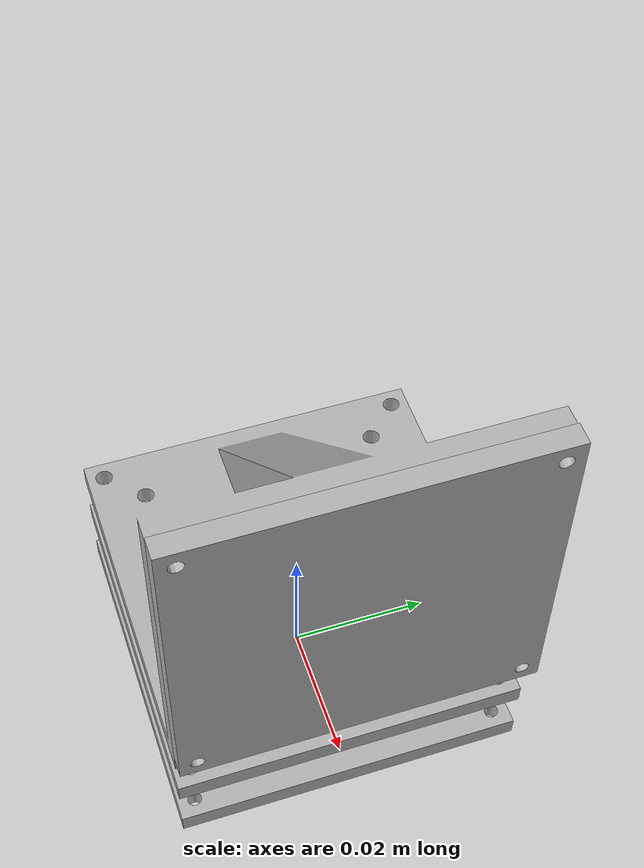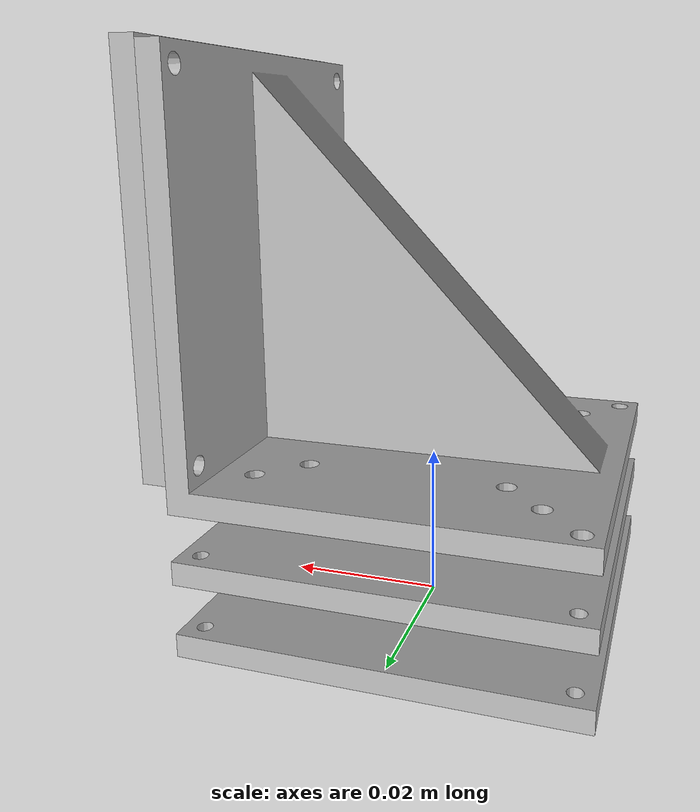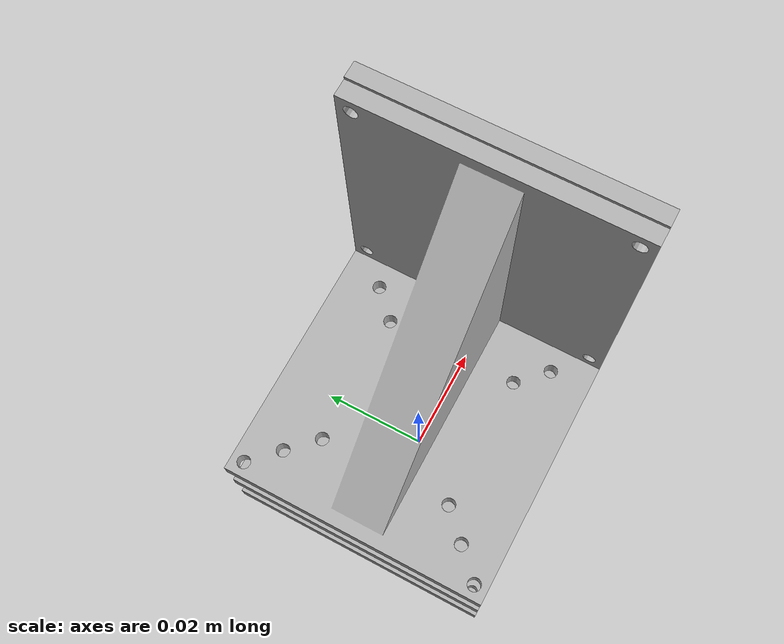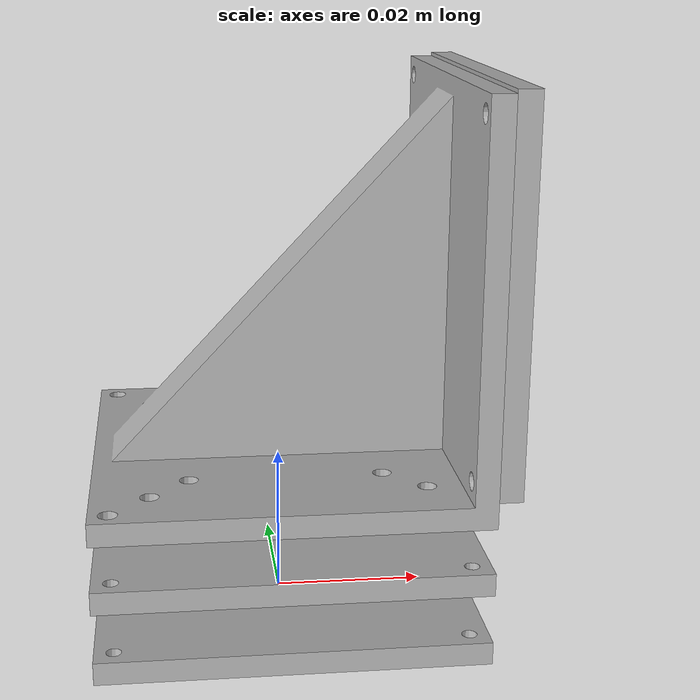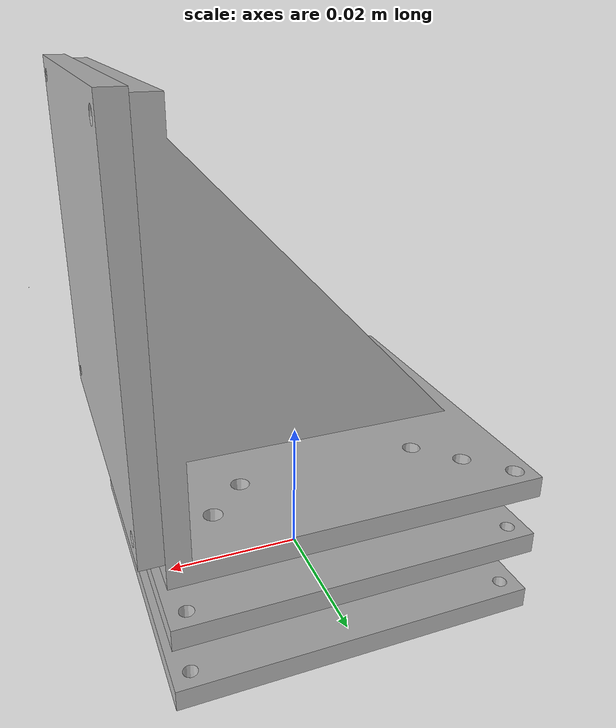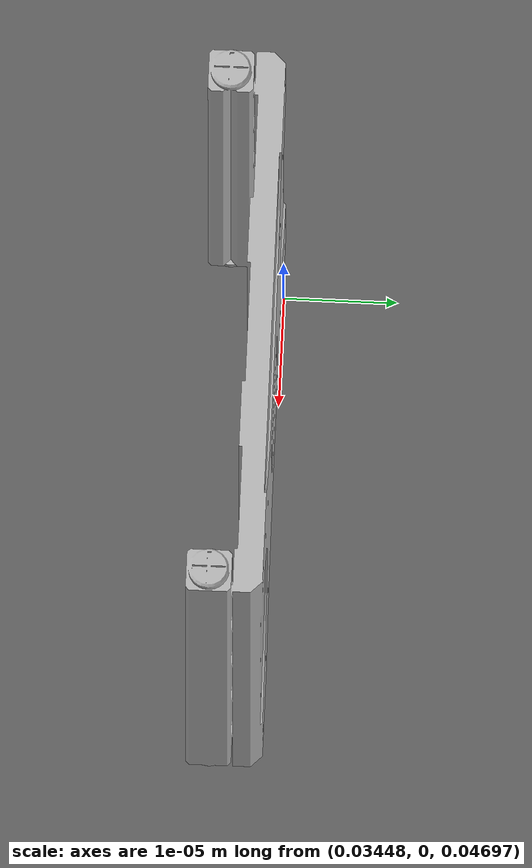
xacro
<?xml version="1.0"?>
<robot xmlns:xacro="http://www.ros.org/wiki/xacro" name="stage">

    <xacro:arg name="hardware_interface" default="PositionJointInterface"/>
    <xacro:arg name="prefix" default="x"/>
    <link name="base_link"/>

    <xacro:include filename="$(find micro_resector_description)/urdf/materials.xacro" />
    <xacro:include filename="$(find micro_resector_description)/urdf/stage/linear_stage.xacro"/>
    <xacro:include filename="$(find micro_resector_description)/urdf/link/l_bracket.xacro"/>

    <joint name="x_linear_stage_world_joint" type="fixed">
        <parent link="base_link"/>
        <child link="x_lin_base_link"/>
        <origin xyz="0.0 0.0 0.00" rpy="${pi/2} 0.0 0.0"/>
    </joint>

    <xacro:linear_stage hardware_interface="$(arg hardware_interface)" prefix="x">
    </xacro:linear_stage>

    <joint name="y_linear_stage_joint" type="fixed">
        <parent link="x_lin_stage_link"/>
        <child link="y_lin_base_link"/>
        <origin xyz="0.0 0.0 0.00" rpy="0.0 ${pi/2} 0.0"/>
    </joint>

    <xacro:linear_stage hardware_interface="$(arg hardware_interface)" prefix="y">
    </xacro:linear_stage>

    <joint name="l_bracket_joint" type="fixed">
        <parent link="y_lin_stage_link"/>
        <child link="z_bracket_base_link"/>
        <origin xyz="0.0 0.0 0.00" rpy="0.0 0.0 0.0"/>
    </joint>

    <xacro:l_bracket prefix="z">
    </xacro:l_bracket>

    <joint name="z_linear_stage_joint" type="fixed">
        <parent link="z_bracket_side_link"/>
        <child link="z_lin_base_link"/>
        <origin xyz="0.0 0.0 0.00" rpy="0.0 ${pi/2} 0.0"/>
    </joint>

    <xacro:linear_stage hardware_interface="$(arg hardware_interface)" prefix="z">
    </xacro:linear_stage>

</robot>

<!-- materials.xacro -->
<robot name="stage" xmlns:xacro="http://www.ros.org/wiki/xacro" >

<material name="silver">
  <color rgba="0.700 0.700 0.700 1.000"/>
</material>

</robot>

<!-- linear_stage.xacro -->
<robot name="linear_stage" xmlns:xacro="http://www.ros.org/wiki/xacro">

<xacro:include filename="$(find micro_resector_description)/urdf/stage/stage.trans" />
<xacro:include filename="$(find micro_resector_description)/urdf/stage/stage.gazebo" />

<xacro:macro name="linear_stage" params="prefix hardware_interface">
  <link name="${prefix}_lin_base_link">
    <inertial>
      <origin rpy="0 0 0" xyz="0.0 0.0015 0.0"/>
      <mass value="0.058579061972031825"/>
      <inertia ixx="1.2e-05" ixy="-0.0" ixz="-0.0" iyy="2.4e-05" iyz="0.0" izz="1.2e-05"/>
    </inertial>
    <visual>
      <origin rpy="0 0 0" xyz="0 0.0095 0"/>
      <geometry>
        <mesh filename="package://micro_resector_description/meshes/stage/lin_base_link.stl" scale="0.001 0.001 0.001"/>
      </geometry>
      <material name="silver"/>
    </visual>
    <collision>
      <origin rpy="0 0 0" xyz="0 0.0095 0"/>
      <geometry>
        <mesh filename="package://micro_resector_description/meshes/stage/lin_base_link.stl" scale="0.001 0.001 0.001"/>
      </geometry>
    </collision>
  </link>

  <link name="${prefix}_lin_stage_link">
    <inertial>
      <origin rpy="0 0 0" xyz="0.0 -0.00028 0.0"/>
      <mass value="0.11339718225370693"/>
      <inertia ixx="2.3e-05" ixy="0.0" ixz="0.0" iyy="4.6e-05" iyz="0.0" izz="2.3e-05"/>
    </inertial>
    <visual>
      <origin rpy="0 0 0" xyz="0.0 0.0 -0.0"/>
      <geometry>
        <mesh filename="package://micro_resector_description/meshes/stage/lin_stage_link.stl" scale="0.001 0.001 0.001"/>
      </geometry>
      <material name="silver"/>
    </visual>
    <collision>
      <origin rpy="0 0 0" xyz="0.0 0.0 -0.0"/>
      <geometry>
        <mesh filename="package://micro_resector_description/meshes/stage/lin_stage_link.stl" scale="0.001 0.001 0.001"/>
      </geometry>
    </collision>
  </link>

  <joint name="${prefix}_lin_joint" type="prismatic">
    <origin rpy="0 0 0" xyz="0.0 0.0095 0.0"/>
    <parent link="${prefix}_lin_base_link"/>
    <child link="${prefix}_lin_stage_link"/>
    <axis xyz="1 0.0 0.0"/>
    <limit effort="100" lower="-0.015" upper="0.015" velocity="0.0045"/>
  </joint>

  <xacro:stage_gazebo prefix="$(arg prefix)" type="lin"/>
  <xacro:stage_transmission prefix="$(arg prefix)" hardware_interface="${hardware_interface}" type="lin"/>

</xacro:macro>

</robot>

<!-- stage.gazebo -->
<robot xmlns:xacro="http://www.ros.org/wiki/xacro" >

<xacro:property name="body_color" value="Gazebo/Silver" />

<xacro:macro name="stage_gazebo" params="prefix type">
  <gazebo>
    <plugin filename="libgazebo_ros_control.so" name="control"/>
  </gazebo>
  <gazebo reference="$(arg prefix)_${type}_base_link">
    <material>${body_color}</material>
    <mu1>0.2</mu1>
    <mu2>0.2</mu2>
    <selfCollide>true</selfCollide>
    <gravity>true</gravity>
  </gazebo>

  <gazebo reference="$(arg prefix)_${type}_stage_link">
    <material>${body_color}</material>
    <mu1>0.2</mu1>
    <mu2>0.2</mu2>
    <selfCollide>true</selfCollide>
  </gazebo>
</xacro:macro>
</robot>

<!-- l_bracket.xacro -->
<robot name="l_bracket" xmlns:xacro="http://www.ros.org/wiki/xacro">

<xacro:macro name="l_bracket" params="prefix">
  <link name="${prefix}_bracket_base_link">
    <inertial>
      <origin rpy="0 0 0" xyz="0.0 0.0075 0.0"/>
      <mass value="0.058579061972031825"/>
      <inertia ixx="1.2e-05" ixy="-0.0" ixz="-0.0" iyy="2.4e-05" iyz="0.0" izz="1.2e-05"/>
    </inertial>
    <visual>
      <origin rpy="0 0 0" xyz="0 -0.01 0"/>
      <geometry>
        <mesh filename="package://micro_resector_description/meshes/link/l_bracket.stl" scale="0.001 0.001 0.001"/>
      </geometry>
      <material name="silver"/>
    </visual>
    <collision>
      <origin rpy="0 0 0" xyz="0 -0.01 0"/>
      <geometry>
        <mesh filename="package://micro_resector_description/meshes/link/l_bracket.stl" scale="0.001 0.001 0.001"/>
      </geometry>
    </collision>
  </link>

  <link name="${prefix}_bracket_side_link"/>

  <joint name="${prefix}_bracket_joint" type="fixed">
    <origin rpy="${pi/2} 0 0" xyz="0.0 0.028 0.025"/>
    <parent link="${prefix}_bracket_base_link"/>
    <child link="${prefix}_bracket_side_link"/>
  </joint>
</xacro:macro>

</robot>
